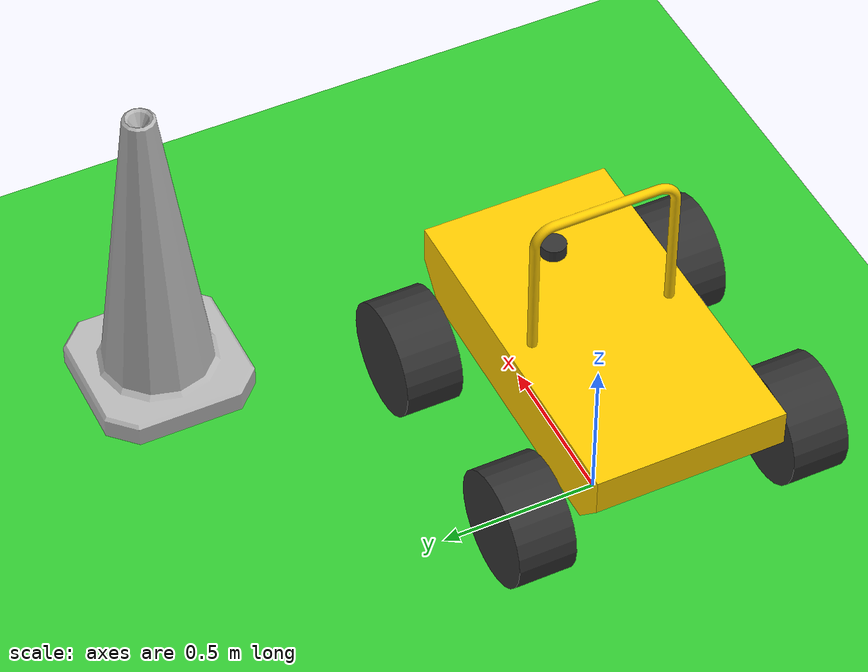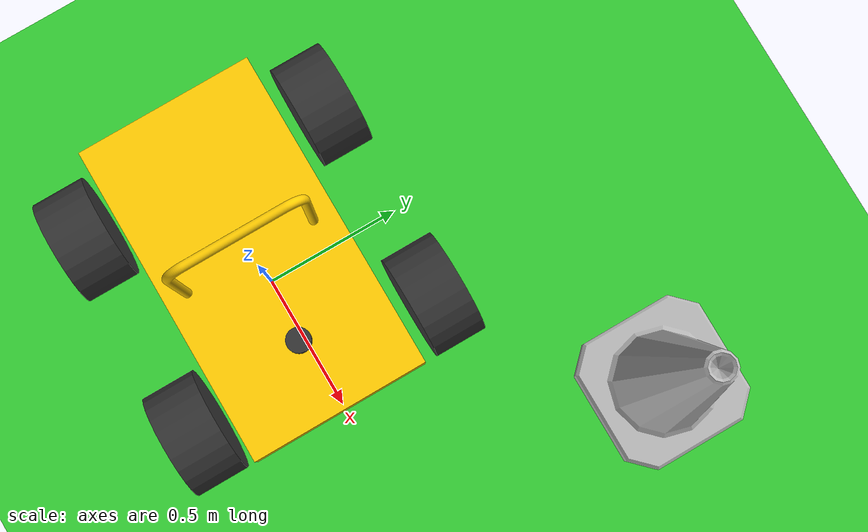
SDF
<?xml version="1.0" ?>
<sdf version="1.9">
  <world name="vineyard">
    <physics name="1ms" type="ignore">
      <max_step_size>0.001</max_step_size>
      <real_time_factor>0.15</real_time_factor>
    </physics>

    <plugin filename="gz-sim-physics-system"
      name="gz::sim::systems::Physics">
    </plugin>
    <plugin
      filename="gz-sim-sensors-system"
      name="gz::sim::systems::Sensors">
      <render_engine>ogre2</render_engine>
    </plugin>
    <plugin filename="gz-sim-user-commands-system"
      name="gz::sim::systems::UserCommands">
    </plugin>
    <plugin filename="gz-sim-scene-broadcaster-system"
      name="gz::sim::systems::SceneBroadcaster">
    </plugin>
    <plugin filename="gz-sim-imu-system"
      name="gz::sim::systems::Imu">
    </plugin>
    <plugin filename="gz-sim-magnetometer-system"
      name="gz::sim::systems::Magnetometer">
    </plugin>
    <plugin filename="gz-sim-navsat-system"
      name="gz::sim::systems::NavSat">
    </plugin>

    <scene>
      <ambient>1.0 1.0 1.0</ambient>
      <background>0.8 0.8 0.8</background>
      <sky></sky>
    </scene>

    <light type="directional" name="sun">
      <cast_shadows>true</cast_shadows>
      <pose>0 0 10 0 0 0</pose>
      <diffuse>0.8 0.8 0.8 1</diffuse>
      <specular>0.8 0.8 0.8 1</specular>
      <attenuation>
        <range>1000</range>
        <constant>0.9</constant>
        <linear>0.01</linear>
        <quadratic>0.001</quadratic>
      </attenuation>
      <direction>-0.5 0.1 -0.9</direction>
    </light>

    <spherical_coordinates>
      <latitude_deg>-35.3632621</latitude_deg>
      <longitude_deg>149.1652374</longitude_deg>
      <elevation>10.0</elevation>
      <heading_deg>0</heading_deg>
      <surface_model>EARTH_WGS84</surface_model>
    </spherical_coordinates>

    <include>
      <pose degrees="true">1 1 0 0 0 0</pose>
      <uri>model://construction_cone</uri>
    </include>

    <include>
      <pose degrees="true">0 0 0 0 0 0</pose>
      <uri>model://Farm</uri>
    </include>

    <include>
      <pose degrees="true">0 0 0.5 0 0 0</pose>
      <uri>model://rover_with_lidar</uri>
      <name>rover</name>
    </include>

  </world>
</sdf>

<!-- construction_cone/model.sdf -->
<sdf version="1.5">
  <model name="Construction Cone">
    <link name="link">
      <collision name="collision">
        <geometry>
          <mesh>
            <scale>10 10 10</scale>
            <uri>file://isr-testbed/construction_cone/meshes/construction_cone.dae</uri>
          </mesh>
        </geometry>
      </collision>
      <visual name="visual">
        <geometry>
          <mesh>
            <scale>10 10 10</scale>
            <uri>file://isr-testbed/construction_cone/meshes/construction_cone.dae</uri>
          </mesh>
        </geometry>
      </visual>
    </link>
  </model>
</sdf>

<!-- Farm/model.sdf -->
<sdf version='1.9'>
    <model name='farm'>
        <static>1</static>
        <self_collide>0</self_collide>

        <link name='farm_link'>
            <inertial>
                <pose>0 0 0 0 0 0</pose>
                <mass>0.01</mass>
                <inertia>
                    <ixx>0.01</ixx>
                    <ixy>0</ixy>
                    <ixz>0</ixz>
                    <iyy>0.01</iyy>
                    <iyz>0</iyz>
                    <izz>0.01</izz>
                </inertia>
            </inertial>
            <collision name='farm_link_collision'>
                <pose>0 0 0 0 0 0</pose>
                <geometry>
                    <plane>
                        <normal>0 0 1</normal>
                        <size>50 50</size>
                    </plane>
                </geometry>
            </collision>
            <visual name='farm_link_visual'>
                <pose>0 0 0 0 0 0</pose>
                <geometry>
                    <plane>
                        <normal>0 0 1</normal>
                        <size>50 50</size>
                    </plane>
                </geometry>
                <material>
                    <ambient>0.1 0.5 0.1 1</ambient>
                    <diffuse>0.2 0.8 0.2 1</diffuse>
                    <specular>0.1 0.1 0.1 1</specular>
                    <emissive>0 0 0 1</emissive>
                    <pbr>
                        <metal>
                            <albedo_map>model://Farm/textures/Grass004_4K-JPG_Color.jpg</albedo_map>
                            <normal_map>model://Farm/textures/Grass004_4K-JPG_NormalDX.jpg</normal_map>
                            <roughness_map>model://Farm/textures/Grass004_4K-JPG_Roughness.jpg</roughness_map>
                            <ambient_occlusion_map>model://Farm/textures/Grass004_4K-JPG_AmbientOcclusion.jpg</ambient_occlusion_map>
                            <roughness>0.8</roughness>
                            <metalness>0.0</metalness>
                        </metal>
                    </pbr>
                </material>
            </visual>
        </link>
  </model>
</sdf>

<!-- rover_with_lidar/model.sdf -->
<sdf version='1.9'>
    <model name='wildthumper_with_lidar'>
        <static>0</static>
        <self_collide>0</self_collide>

        <link name='base_link'>
            <inertial>
                <pose>0 0 0 0 0 0</pose>
                <mass>0.01</mass>
                <inertia>
                    <ixx>0.01</ixx>
                    <ixy>0</ixy>
                    <ixz>0</ixz>
                    <iyy>0.01</iyy>
                    <iyz>0</iyz>
                    <izz>0.01</izz>
                </inertia>
            </inertial>
            <collision name='base_link_collision'>
                <pose>0 0 0 0 0 0</pose>
                <geometry>
                    <box>
                        <size>0.001 0.001 0.001</size>
                    </box>
                </geometry>
            </collision>
            <visual name='base_link_visual'>
                <pose>0 0 0 0 0 0</pose>
                <geometry>
                    <box>
                        <size>0.001 0.001 0.001</size>
                    </box>
                </geometry>
                <material>
                    <diffuse>1 0.3125 0 1</diffuse>
                    <ambient>1 0.3125 0 1</ambient>
                </material>
            </visual>
        </link>

        <joint name='chassis_link_baselink_joint' type='fixed'>
            <pose relative_to='base_link'>0 0 0 0 0 0</pose>
            <parent>base_link</parent>
            <child>chassis_link</child>
        </joint>

        <link name="chassis_link">
            <pose>0 0 0 0 0 0</pose>
            <visual name="chassis_visual">
                <pose>0 0 0 0 0 0</pose>
                <geometry>
                    <mesh>
                        <uri>model://rover_with_lidar/meshes/chassis_simple.stl</uri>
                    </mesh>
                </geometry>
                <material>
                    <ambient>1 1 0 1</ambient>
                    <diffuse>1 0.8 0 1</diffuse>
                    <specular>1 1 1 1</specular>
                    <emissive>0.5 0.5 0 1</emissive>
                </material>
            </visual>
            <collision name="chassis_collision">
                <pose>0 0 0 0 0 0</pose>
                <geometry>
                    <mesh>
                        <uri>model://rover_with_lidar/meshes/chassis_simple.stl</uri>
                    </mesh>
                </geometry>
            </collision>
            <inertial>
                <pose>0 0 0.116 0 0 0</pose>
                <mass>76.476</mass>
                <inertia>
                    <ixx>3.032</ixx>
                    <ixy>-0.001</ixy>
                    <ixz>-0.077</ixz>
                    <iyy>9.132</iyy>
                    <iyz>-0.003</iyz>
                    <izz>11.061</izz>
                </inertia>
            </inertial>
        </link>

        <!-- Wheels -->
        <!-- front right wheel-->
        <joint name='front_right_wheel_joint' type='revolute'>
            <pose relative_to='chassis_link'>0.362 -0.441 -0.043 0 0 0</pose>
            <parent>chassis_link</parent>
            <child>front_right_wheel_link</child>
            <axis>
                <xyz expressed_in='front_right_wheel_link'>0 1 0</xyz>
                <limit>
                    <lower>-1.79769e+308</lower>
                    <upper>1.79769e+308</upper>
                </limit>
                <dynamics>
                    <damping>0.02</damping>
                </dynamics>
            </axis>
        </joint>

        <link name="front_right_wheel_link">
            <pose relative_to='front_right_wheel_joint'>0 0 0 0 0 0</pose>
            <visual name="front_right_wheel_visual">
                <pose>0 0 0 1.57 0 0</pose>
                <geometry>
                    <cylinder>
                        <radius>0.18</radius>
                        <length>0.18</length>
                    </cylinder>
                </geometry>
                <material>
                    <ambient>0.1 0.1 0.1 1</ambient>
                    <diffuse>0.2 0.2 0.2 1</diffuse>
                    <specular>0.05 0.05 0.05 1</specular>
                    <emissive>0 0 0 1</emissive>
                </material>
            </visual>
            <collision name="front_right_wheel_collision">
                <pose>0 0 0 1.57 0 0</pose>
                <geometry>
                    <cylinder>
                        <radius>0.18</radius>
                        <length>0.18</length>
                    </cylinder>
                </geometry>
                <surface>
                    <friction>
                        <ode>
                            <mu>10</mu>
                            <mu2>5</mu2>
                            <fdir1>1 0 0</fdir1>
                            <slip1>0.002</slip1>
                            <slip2>0.002</slip2>
                        </ode>
                    </friction>
                </surface>
            </collision>
            <inertial>
                <pose>0 0 0 0 0 1.57</pose>
                <mass>8</mass>
                <inertia>
                    <ixx>0.12</ixx>
                    <ixy>0</ixy>
                    <ixz>0</ixz>
                    <iyy>0.076</iyy>
                    <iyz>0</iyz>
                    <izz>0.076</izz>
                </inertia>
            </inertial>
        </link>

        <!-- front left wheel -->
        <joint name='front_left_wheel_joint' type='revolute'>
            <pose relative_to='chassis_link'>0.362 0.441 -0.043 0 0 0</pose>
            <parent>chassis_link</parent>
            <child>front_left_wheel_link</child>
            <axis>
                <xyz expressed_in='front_left_wheel_link'>0 1 0</xyz>
                <limit>
                    <lower>-1.79769e+308</lower>
                    <upper>1.79769e+308</upper>
                </limit>
                <dynamics>
                    <damping>0.02</damping>
                </dynamics>
            </axis>
        </joint>

        <link name="front_left_wheel_link">
            <pose relative_to='front_left_wheel_joint'>0 0 0 0 0 0</pose>
            <visual name="front_left_wheel_visual">
                <pose>0 0 0 1.57 0 0</pose>
                <geometry>
                    <cylinder>
                        <radius>0.18</radius>
                        <length>0.18</length>
                    </cylinder>
                </geometry>
                <material>
                    <ambient>0.1 0.1 0.1 1</ambient>
                    <diffuse>0.2 0.2 0.2 1</diffuse>
                    <specular>0.05 0.05 0.05 1</specular>
                    <emissive>0 0 0 1</emissive>
                </material>
            </visual>
            <collision name="front_left_wheel_collision">
                <pose>0 0 0 1.57 0 0</pose>
                <geometry>
                    <cylinder>
                        <radius>0.18</radius>
                        <length>0.18</length>
                    </cylinder>
                </geometry>
                <surface>
                    <friction>
                        <ode>
                            <mu>10</mu>
                            <mu2>5</mu2>
                            <fdir1>1 0 0</fdir1>
                            <slip1>0.002</slip1>
                            <slip2>0.002</slip2>
                        </ode>
                    </friction>
                </surface>
            </collision>
            <inertial>
                <pose>0 0 0 0 0 1.57</pose>
                <mass>8</mass>
                <inertia>
                    <ixx>0.12</ixx>
                    <ixy>0</ixy>
                    <ixz>0</ixz>
                    <iyy>0.076</iyy>
                    <iyz>0</iyz>
                    <izz>0.076</izz>
                </inertia>
            </inertial>
        </link>

        <!-- back right wheel -->
        <joint name='back_right_wheel_joint' type='revolute'>
            <pose relative_to='chassis_link'>-0.362 -0.441 -0.043 0 0 0</pose>
            <parent>chassis_link</parent>
            <child>back_right_wheel_link</child>
            <axis>
                <xyz expressed_in='chassis_link'>0 1 0</xyz>
                <limit>
                    <lower>-1.79769e+308</lower>
                    <upper>1.79769e+308</upper>
                </limit>
                <dynamics>
                    <damping>0.02</damping>
                </dynamics>
            </axis>
        </joint>

        <link name="back_right_wheel_link">
            <pose relative_to='back_right_wheel_joint'>0 0 0 0 0 0</pose>
            <visual name="back_right_wheel_visual">
                <pose>0 0 0 1.57 0 0</pose>
                <geometry>
                    <cylinder>
                        <radius>0.18</radius>
                        <length>0.18</length>
                    </cylinder>
                </geometry>
                <material>
                    <ambient>0.1 0.1 0.1 1</ambient>
                    <diffuse>0.2 0.2 0.2 1</diffuse>
                    <specular>0.05 0.05 0.05 1</specular>
                    <emissive>0 0 0 1</emissive>
                </material>
            </visual>
            <collision name="back_right_wheel_collision">
                <pose>0 0 0 1.57 0 0</pose>
                <geometry>
                    <cylinder>
                        <radius>0.18</radius>
                        <length>0.18</length>
                    </cylinder>
                </geometry>
                <surface>
                    <friction>
                        <ode>
                            <mu>10</mu>
                            <mu2>5</mu2>
                            <fdir1>1 0 0</fdir1>
                            <slip1>0.002</slip1>
                            <slip2>0.002</slip2>
                        </ode>
                    </friction>
                </surface>
            </collision>
            <inertial>
                <pose>0 0 0 0 0 1.57</pose>
                <mass>8</mass>
                <inertia>
                    <ixx>0.12</ixx>
                    <ixy>0</ixy>
                    <ixz>0</ixz>
                    <iyy>0.076</iyy>
                    <iyz>0</iyz>
                    <izz>0.076</izz>
                </inertia>
            </inertial>
        </link>

        <!-- back left wheel -->
        <joint name='back_left_wheel_joint' type='revolute'>
            <pose relative_to='chassis_link'>-0.362 0.441 -0.043 0 0 0</pose>
            <parent>chassis_link</parent>
            <child>back_left_wheel_link</child>
            <axis>
                <xyz expressed_in='chassis_link'>0 1 0</xyz>
                <limit>
                    <lower>-1.79769e+308</lower>
                    <upper>1.79769e+308</upper>
                </limit>
                <dynamics>
                    <damping>0.02</damping>
                </dynamics>
            </axis>
        </joint>

        <link name="back_left_wheel_link">
            <pose relative_to='back_left_wheel_joint'>0 0 0 0 0 0</pose>
            <visual name="back_left_wheel_visual">
                <pose>0 0 0 1.57 0 0</pose>
                <geometry>
                    <cylinder>
                        <radius>0.18</radius>
                        <length>0.18</length>
                    </cylinder>
                </geometry>
                <material>
                    <ambient>0.1 0.1 0.1 1</ambient>
                    <diffuse>0.2 0.2 0.2 1</diffuse>
                    <specular>0.05 0.05 0.05 1</specular>
                    <emissive>0 0 0 1</emissive>
                </material>
            </visual>
            <collision name="back_left_wheel_collision">
                <pose>0 0 0 1.57 0 0</pose>
                <geometry>
                    <cylinder>
                        <radius>0.18</radius>
                        <length>0.18</length>
                    </cylinder>
                </geometry>
                <surface>
                    <friction>
                        <ode>
                            <mu>10</mu>
                            <mu2>5</mu2>
                            <fdir1>1 0 0</fdir1>
                            <slip1>0.002</slip1>
                            <slip2>0.002</slip2>
                        </ode>
                    </friction>
                </surface>
            </collision>
            <inertial>
                <pose>0 0 0 0 0 1.57</pose>
                <mass>8</mass>
                <inertia>
                    <ixx>0.12</ixx>
                    <ixy>0</ixy>
                    <ixz>0</ixz>
                    <iyy>0.076</iyy>
                    <iyz>0</iyz>
                    <izz>0.076</izz>
                </inertia>
            </inertial>
        </link>

        <!-- sensors -->
        <link name='imu_link'>
            <pose relative_to='imu_joint'>0 0 0 0 0 0 </pose>
            <visual name='visual'>
                <pose>0 0 0 0 0 0</pose>
                <geometry>
                    <cylinder>
                        <radius>0.02</radius>
                        <length>0.02</length>
                    </cylinder>
                </geometry>
                <material>
                    <ambient>0.1 0.1 0.1 1</ambient>
                    <diffuse>0.2 0.2 0.2 1</diffuse>
                    <specular>0.05 0.05 0.05 1</specular>
                    <emissive>0 0 0 1</emissive>
                </material>
            </visual>
            <inertial>
                <pose>0 0 0 0 0 0</pose>
                <mass>0.15</mass>
                <inertia>
                    <ixx>0.00002</ixx>
                    <ixy>0</ixy>
                    <ixz>0</ixz>
                    <iyy>0.00002</iyy>
                    <iyz>0</iyz>
                    <izz>0.00002</izz>
                </inertia>
            </inertial>
            <sensor name="imu_sensor" type="imu">
                <pose degrees="true">0 0 0 180 0 0</pose>
                <always_on>1</always_on>
                <update_rate>1000.0</update_rate>
            </sensor>
        </link>

        <joint name='imu_joint' type='fixed'>
            <pose relative_to='chassis_link'>0 0 -0.2225 0 0 0</pose>
            <child>imu_link</child>
            <parent>base_link</parent>
        </joint>

        <link name='base_scan'>
            <pose relative_to='base_scan_joint'>0 0 0 0 0 0</pose>
            <inertial>
                <pose>0 0 0 0 0 0</pose>
                <mass>0.15</mass>
                <inertia>
                    <ixx>9.09375e-05</ixx>
                    <ixy>0</ixy>
                    <ixz>0</ixz>
                    <iyy>9.09375e-05</iyy>
                    <iyz>0</iyz>
                    <izz>9.1875e-05</izz>
                </inertia>
            </inertial>
            <collision name='collision'>
                <pose>0 0 0 0 0 0</pose>
                <geometry>
                    <cylinder>
                        <radius>0.04</radius>
                        <length>0.04</length>
                    </cylinder>
                </geometry>
            </collision>
            <visual name='visual'>
                <pose>0 0 0 0 0 0</pose>
                <geometry>
                    <cylinder>
                        <radius>0.04</radius>
                        <length>0.04</length>
                    </cylinder>
                </geometry>
                <material>
                    <ambient>0.1 0.1 0.1 1</ambient>
                    <diffuse>0.2 0.2 0.2 1</diffuse>
                    <specular>0.05 0.05 0.05 1</specular>
                    <emissive>0 0 0 1</emissive>
                </material>
            </visual>
            <sensor name='lidar' type='gpu_lidar'>
                <gz_frame_id>base_scan</gz_frame_id>
                <pose>0 0 0.045 0 -0 0</pose>
                <always_on>1</always_on>
                <topic>lidar</topic>
                <update_rate>10</update_rate>
                <visualize>1</visualize>
                <ray>
                    <scan>
                        <horizontal>
                            <samples>360</samples>
                            <resolution>1</resolution>
                            <min_angle>-3.14159265</min_angle>
                            <max_angle>3.14159265</max_angle>
                        </horizontal>
                        <vertical>
                            <samples>1</samples>
                            <resolution>1</resolution>
                            <min_angle>0</min_angle>
                            <max_angle>0</max_angle>
                        </vertical>
                    </scan>
                    <range>
                        <min>0.1</min>
                        <max>12</max>
                        <resolution>0.05</resolution>
                    </range>
                    <noise>
                        <type>gaussian</type>
                        <mean>0</mean>
                        <stddev>0.01</stddev>
                    </noise>
                </ray>
            </sensor>
        </link>

        <joint name='base_scan_joint' type='fixed'>
            <pose relative_to='chassis_link'>0.300 0 0.251 0 0 0</pose>
            <parent>base_link</parent>
            <child>base_scan</child>
        </joint>

        <!-- plugins -->
        <plugin filename="gz-sim-joint-state-publisher-system"
            name="gz::sim::systems::JointStatePublisher">
        </plugin>

        <plugin filename="gz-sim-odometry-publisher-system"
            name="gz::sim::systems::OdometryPublisher">
            <odom_frame>gz_odom</odom_frame>
            <robot_base_frame>base_link</robot_base_frame>
            <dimensions>3</dimensions>
        </plugin>

        <plugin filename="gz-sim-apply-joint-force-system"
            name="gz::sim::systems::ApplyJointForce">
            <joint_name>front_right_wheel_joint</joint_name>
        </plugin>

        <plugin filename="gz-sim-apply-joint-force-system"
            name="gz::sim::systems::ApplyJointForce">
            <joint_name>front_left_wheel_joint</joint_name>
        </plugin>

        <plugin filename="gz-sim-apply-joint-force-system"
            name="gz::sim::systems::ApplyJointForce">
            <joint_name>back_right_wheel_joint</joint_name>
        </plugin>

        <plugin filename="gz-sim-apply-joint-force-system"
            name="gz::sim::systems::ApplyJointForce">
            <joint_name>back_left_wheel_joint</joint_name>
        </plugin>

        <plugin name="ArduPilotPlugin" filename="ArduPilotPlugin">
            <!-- Port settings -->
            <fdm_addr>127.0.0.1</fdm_addr>
            <fdm_port_in>9002</fdm_port_in>
            <connectionTimeoutMaxCount>5</connectionTimeoutMaxCount>
            <lock_step>1</lock_step>

            <modelXYZToAirplaneXForwardZDown degrees="true">0 0 0 180 0 0</modelXYZToAirplaneXForwardZDown>
            <gazeboXYZToNED degrees="true">0 0 0 180 0 90</gazeboXYZToNED>

            <!-- Sensors -->
            <imuName>imu_sensor</imuName>

            <control channel="0">
                <jointName>front_left_wheel_joint</jointName>
                <useForce>1</useForce>
                <multiplier>92.6</multiplier>
                <offset>-0.5</offset>
                <servo_min>1000</servo_min>
                <servo_max>2000</servo_max>
                <type>VELOCITY</type>
                <p_gain>0.8</p_gain>
                <i_gain>0.12</i_gain>
                <d_gain>0.0002</d_gain>
                <i_max>1</i_max>
                <i_min>-1</i_min>
                <cmd_max>-1</cmd_max>
                <cmd_min>0</cmd_min>
            </control>

            <control channel="0">
                <jointName>back_left_wheel_joint</jointName>
                <useForce>1</useForce>
                <multiplier>92.6</multiplier>
                <offset>-0.5</offset>
                <servo_min>1000</servo_min>
                <servo_max>2000</servo_max>
                <type>VELOCITY</type>
                <p_gain>0.8</p_gain>
                <i_gain>0.12</i_gain>
                <d_gain>0.0002</d_gain>
                <i_max>1</i_max>
                <i_min>-1</i_min>
                <cmd_max>-1</cmd_max>
                <cmd_min>0</cmd_min>
            </control>

            <control channel="2">
                <jointName>front_right_wheel_joint</jointName>
                <useForce>1</useForce>
                <multiplier>92.6</multiplier>
                <offset>-0.5</offset>
                <servo_min>1000</servo_min>
                <servo_max>2000</servo_max>
                <type>VELOCITY</type>
                <p_gain>0.8</p_gain>
                <i_gain>0.12</i_gain>
                <d_gain>0.0002</d_gain>
                <i_max>1</i_max>
                <i_min>-1</i_min>
                <cmd_max>-1</cmd_max>
                <cmd_min>0</cmd_min>
            </control>

            <control channel="2">
                <jointName>back_right_wheel_joint</jointName>
                <useForce>1</useForce>
                <multiplier>92.6</multiplier>
                <offset>-0.5</offset>
                <servo_min>1000</servo_min>
                <servo_max>2000</servo_max>
                <type>VELOCITY</type>
                <p_gain>0.8</p_gain>
                <i_gain>0.12</i_gain>
                <d_gain>0.0002</d_gain>
                <i_max>1</i_max>
                <i_min>-1</i_min>
                <cmd_max>-1</cmd_max>
                <cmd_min>0</cmd_min>
            </control>
        </plugin>
    </model>
</sdf>
